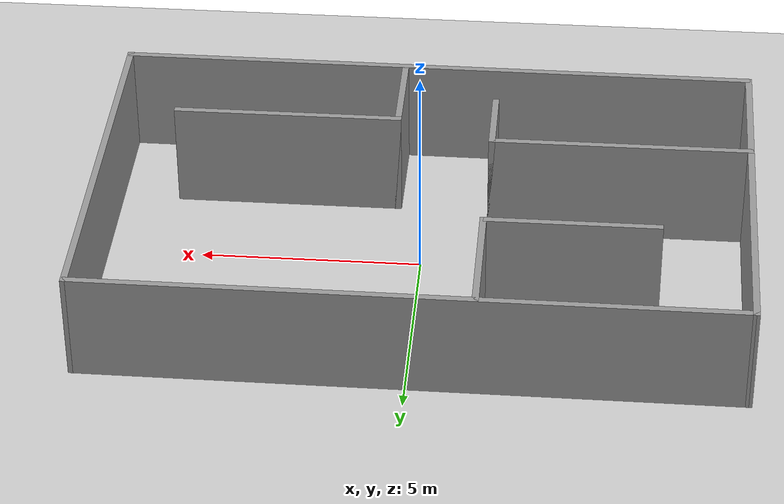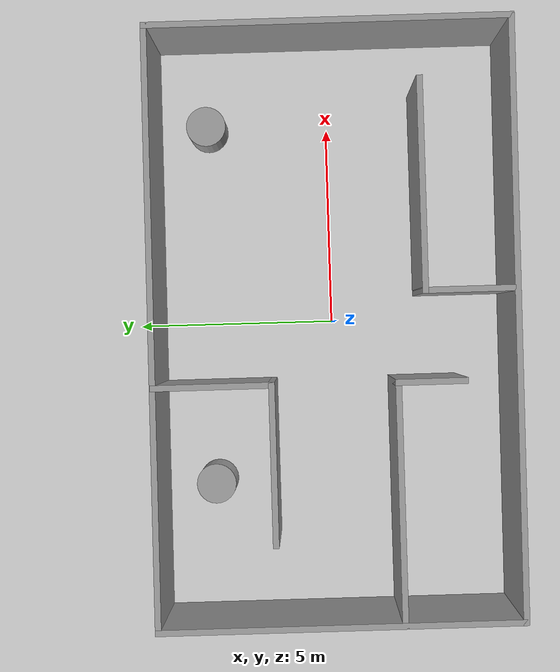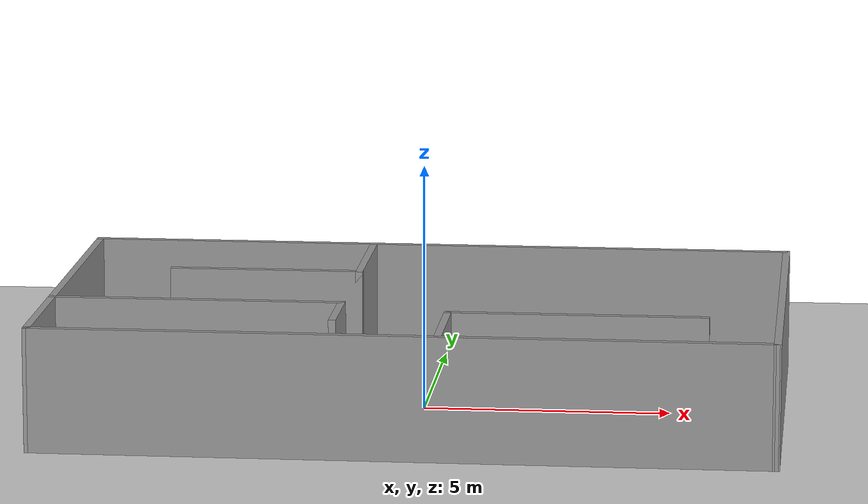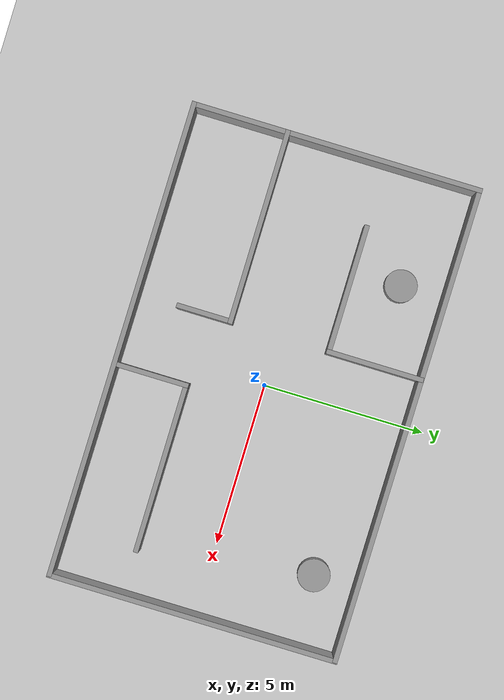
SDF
<sdf version="1.7">
 <world name="default">
  <light name="sun" type="directional">
   <pose>0 0 10 0 -0 0</pose>
   <diffuse>0.8 0.8 0.8 1</diffuse>
   <specular>0.2 0.2 0.2 1</specular>
   <attenuation>
    <range>1000</range>
    <constant>0.9</constant>
    <linear>0.01</linear>
    <quadratic>0.001</quadratic>
   </attenuation>
   <direction>-0.5 0.1 -0.9</direction>
   <spot><inner_angle>0</inner_angle><outer_angle>0</outer_angle><falloff>0</falloff></spot>
  </light>
  <model name="ground_plane">
   <static>1</static>
   <link name="link">
    <collision name="collision">
     <geometry><plane><normal>0 0 1</normal><size>100 100</size></plane></geometry>
     <surface><friction><ode><mu>100</mu><mu2>50</mu2></ode></friction></surface>
    </collision>
    <visual name="visual">
     <cast_shadows>0</cast_shadows>
     <geometry><plane><normal>0 0 1</normal><size>100 100</size></plane></geometry>
     <material>
      <script><uri>file://media/materials/scripts/gazebo.material</uri><name>Gazebo/Grey</name></script>
     </material>
    </visual>
   </link>
  </model>
  <gravity>0 0 -9.8</gravity>
  <magnetic_field>6e-06 2.3e-05 -4.2e-05</magnetic_field>
  <atmosphere type="adiabatic"/>
  <physics type="ode">
   <max_step_size>0.001</max_step_size>
   <real_time_factor>1</real_time_factor>
   <real_time_update_rate>1000</real_time_update_rate>
  </physics>
  <scene><ambient>0.4 0.4 0.4 1</ambient><background>0.7 0.7 0.7 1</background><shadows>1</shadows></scene>
  <audio><device>default</device></audio>
  <spherical_coordinates>
   <surface_model>EARTH_WGS84</surface_model>
   <latitude_deg>0</latitude_deg>
   <longitude_deg>0</longitude_deg>
   <elevation>0</elevation>
   <heading_deg>0</heading_deg>
  </spherical_coordinates>
  <model name="room">
   <pose>-0.069935 -0.016857 0 0 -0 0</pose>
   <link name="Wall_1">
    <collision name="Wall_1_Collision">
     <geometry><box><size>14.7248 0.15 2.5</size></box></geometry>
     <pose>0 0 1.25 0 -0 0</pose>
    </collision>
    <visual name="Wall_1_Visual">
     <pose>0 0 1.25 0 -0 0</pose>
     <geometry><box><size>14.7248 0.15 2.5</size></box></geometry>
     <material>
      <script><uri>file://media/materials/scripts/gazebo.material</uri><name>Gazebo/Grey</name></script>
      <ambient>1 1 1 1</ambient>
     </material>
     <meta><layer>0</layer></meta>
    </visual>
    <pose>-0.015138 -4.425 0 0 -0 -0.004198</pose>
   </link>
   <link name="Wall_10">
    <collision name="Wall_10_Collision">
     <geometry><box><size>6 0.15 2.5</size></box></geometry>
     <pose>0 0 1.25 0 -0 0</pose>
    </collision>
    <visual name="Wall_10_Visual">
     <pose>0 0 1.25 0 -0 0</pose>
     <geometry><box><size>6 0.15 2.5</size></box></geometry>
     <material>
      <script><uri>file://media/materials/scripts/gazebo.material</uri><name>Gazebo/Grey</name></script>
      <ambient>1 1 1 1</ambient>
     </material>
     <meta><layer>0</layer></meta>
    </visual>
    <pose>-4.37633 -1.49034 0 0 -0 0</pose>
   </link>
   <link name="Wall_12">
    <collision name="Wall_12_Collision">
     <geometry><box><size>1.75 0.15 2.5</size></box></geometry>
     <pose>0 0 1.25 0 -0 0</pose>
    </collision>
    <visual name="Wall_12_Visual">
     <pose>0 0 1.25 0 -0 0</pose>
     <geometry><box><size>1.75 0.15 2.5</size></box></geometry>
     <material>
      <script><uri>file://media/materials/scripts/gazebo.material</uri><name>Gazebo/Grey</name></script>
      <ambient>1 1 1 1</ambient>
     </material>
     <meta><layer>0</layer></meta>
    </visual>
    <pose>-1.45133 -2.29034 0 0 -0 -1.5708</pose>
   </link>
   <link name="Wall_14">
    <collision name="Wall_14_Collision">
     <geometry><box><size>3 0.15 2.5</size></box></geometry>
     <pose>0 0 1.25 0 -0 0</pose>
    </collision>
    <visual name="Wall_14_Visual">
     <pose>0 0 1.25 0 -0 0</pose>
     <geometry><box><size>3 0.15 2.5</size></box></geometry>
     <material>
      <script><uri>file://media/materials/scripts/gazebo.material</uri><name>Gazebo/Grey</name></script>
      <ambient>1 1 1 1</ambient>
     </material>
     <meta><layer>0</layer></meta>
    </visual>
    <pose>-1.42801 2.98857 0 0 -0 -1.5708</pose>
   </link>
   <link name="Wall_15">
    <collision name="Wall_15_Collision">
     <geometry><box><size>4 0.15 2.5</size></box></geometry>
     <pose>0 0 1.25 0 -0 0</pose>
    </collision>
    <visual name="Wall_15_Visual">
     <pose>0 0 1.25 0 -0 0</pose>
     <geometry><box><size>4 0.15 2.5</size></box></geometry>
     <material>
      <script><uri>file://media/materials/scripts/gazebo.material</uri><name>Gazebo/Grey</name></script>
      <ambient>1 1 1 1</ambient>
     </material>
     <meta><layer>0</layer></meta>
    </visual>
    <pose>-3.35301 1.56357 0 0 -0 3.14159</pose>
   </link>
   <link name="Wall_17">
    <collision name="Wall_17_Collision">
     <geometry><box><size>2.25 0.15 2.5</size></box></geometry>
     <pose>0 0 1.25 0 -0 0</pose>
    </collision>
    <visual name="Wall_17_Visual">
     <pose>0 0 1.25 0 -0 0</pose>
     <geometry><box><size>2.25 0.15 2.5</size></box></geometry>
     <material>
      <script><uri>file://media/materials/scripts/gazebo.material</uri><name>Gazebo/Grey</name></script>
      <ambient>1 1 1 1</ambient>
     </material>
     <meta><layer>0</layer></meta>
    </visual>
    <pose>0.743896 -3.25464 0 0 -0 1.5708</pose>
   </link>
   <link name="Wall_18">
    <collision name="Wall_18_Collision">
     <geometry><box><size>5.25 0.15 2.5</size></box></geometry>
     <pose>0 0 1.25 0 -0 0</pose>
    </collision>
    <visual name="Wall_18_Visual">
     <pose>0 0 1.25 0 -0 0</pose>
     <geometry><box><size>5.25 0.15 2.5</size></box></geometry>
     <material>
      <script><uri>file://media/materials/scripts/gazebo.material</uri><name>Gazebo/Grey</name></script>
      <ambient>1 1 1 1</ambient>
     </material>
     <meta><layer>0</layer></meta>
    </visual>
    <pose>3.2939 -2.20464 0 0 -0 0</pose>
   </link>
   <link name="Wall_6">
    <collision name="Wall_6_Collision">
     <geometry><box><size>9 0.15 2.5</size></box></geometry>
     <pose>0 0 1.25 0 -0 0</pose>
    </collision>
    <visual name="Wall_6_Visual">
     <pose>0 0 1.25 0 -0 0</pose>
     <geometry><box><size>9 0.15 2.5</size></box></geometry>
     <material>
      <script><uri>file://media/materials/scripts/gazebo.material</uri><name>Gazebo/Grey</name></script>
      <ambient>1 1 1 1</ambient>
     </material>
     <meta><layer>0</layer></meta>
    </visual>
    <pose>-7.30248 0.03059 0 0 -0 1.5708</pose>
   </link>
   <link name="Wall_7">
    <collision name="Wall_7_Collision">
     <geometry><box><size>14.7248 0.15 2.5</size></box></geometry>
     <pose>0 0 1.25 0 -0 0</pose>
    </collision>
    <visual name="Wall_7_Visual">
     <pose>0 0 1.25 0 -0 0</pose>
     <geometry><box><size>14.7248 0.15 2.5</size></box></geometry>
     <material>
      <script><uri>file://media/materials/scripts/gazebo.material</uri><name>Gazebo/Grey</name></script>
      <ambient>1 1 1 1</ambient>
     </material>
     <meta><layer>0</layer></meta>
    </visual>
    <pose>-0.015138 4.425 0 0 -0 -0.004198</pose>
   </link>
   <link name="Wall_8">
    <collision name="Wall_8_Collision">
     <geometry><box><size>9 0.15 2.5</size></box></geometry>
     <pose>0 0 1.25 0 -0 0</pose>
    </collision>
    <visual name="Wall_8_Visual">
     <pose>0 0 1.25 0 -0 0</pose>
     <geometry><box><size>9 0.15 2.5</size></box></geometry>
     <material>
      <script><uri>file://media/materials/scripts/gazebo.material</uri><name>Gazebo/Grey</name></script>
      <ambient>1 1 1 1</ambient>
     </material>
     <meta><layer>0</layer></meta>
    </visual>
    <pose>7.3028 -0.03059 0 0 -0 -1.5708</pose>
   </link>
   <static>1</static>
  </model>
  <model name="unit_cylinder">
   <pose>-4.04039 3.06519 0.499997 3e-06 -4e-06 0</pose>
   <link name="link">
    <inertial>
     <mass>1</mass>
     <inertia><ixx>0.145833</ixx><ixy>0</ixy><ixz>0</ixz><iyy>0.145833</iyy><iyz>0</iyz><izz>0.125</izz></inertia>
    </inertial>
    <collision name="collision">
     <geometry><cylinder><radius>0.5</radius><length>1</length></cylinder></geometry>
    </collision>
    <visual name="visual">
     <geometry><cylinder><radius>0.5</radius><length>1</length></cylinder></geometry>
     <material>
      <script><name>Gazebo/Grey</name><uri>file://media/materials/scripts/gazebo.material</uri></script>
     </material>
    </visual>
   </link>
  </model>
  <model name="unit_cylinder_0">
   <pose>5.04149 3.07779 0.499992 -3e-06 4e-06 0</pose>
   <link name="link">
    <inertial>
     <mass>1</mass>
     <inertia><ixx>0.145833</ixx><ixy>0</ixy><ixz>0</ixz><iyy>0.145833</iyy><iyz>0</iyz><izz>0.125</izz></inertia>
    </inertial>
    <collision name="collision">
     <geometry><cylinder><radius>0.5</radius><length>1</length></cylinder></geometry>
    </collision>
    <visual name="visual">
     <geometry><cylinder><radius>0.5</radius><length>1</length></cylinder></geometry>
     <material>
      <script><name>Gazebo/Grey</name><uri>file://media/materials/scripts/gazebo.material</uri></script>
     </material>
    </visual>
   </link>
  </model>
 </world>
</sdf>
